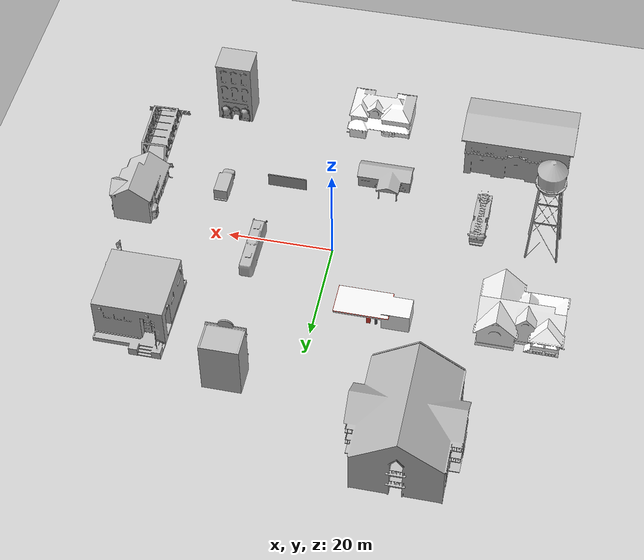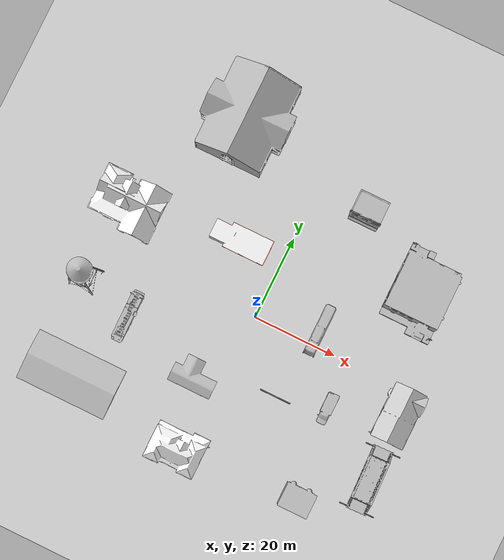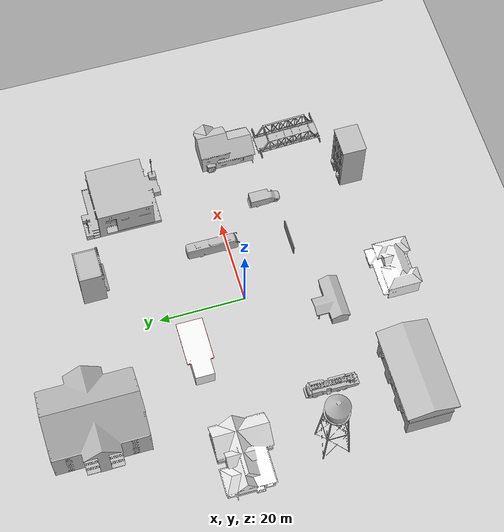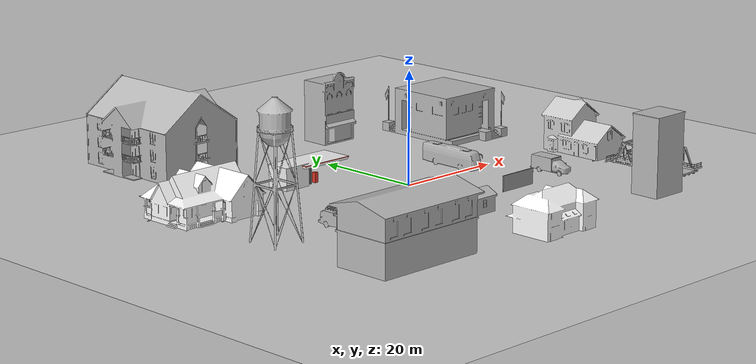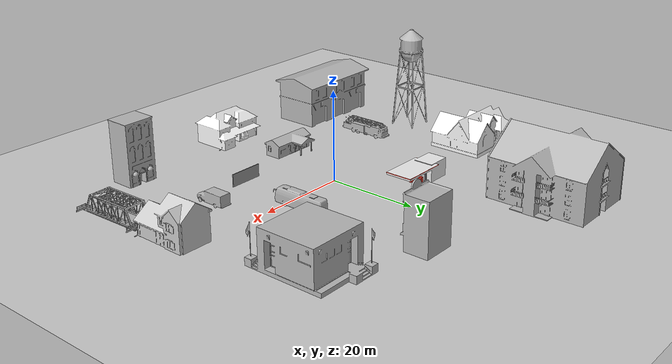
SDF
<sdf version="1.6">
 <world name="default">
  <light name="sun" type="directional">
   <pose>0 0 10 0 -0 0</pose>
   <diffuse>0.8 0.8 0.8 1</diffuse>
   <specular>0.2 0.2 0.2 1</specular>
   <attenuation>
    <range>1000</range>
    <constant>0.9</constant>
    <linear>0.01</linear>
    <quadratic>0.001</quadratic>
   </attenuation>
   <direction>-0.5 0.1 -0.9</direction>
  </light>
  <model name="ground_plane">
   <static>1</static>
   <link name="link">
    <collision name="collision">
     <geometry><plane><normal>0 0 1</normal><size>100 100</size></plane></geometry>
     <surface>
      <contact><collide_bitmask>65535</collide_bitmask></contact>
      <friction><ode><mu>100</mu><mu2>50</mu2></ode></friction>
     </surface>
    </collision>
    <visual name="visual">
     <cast_shadows>0</cast_shadows>
     <geometry><plane><normal>0 0 1</normal><size>100 100</size></plane></geometry>
     <material>
      <script><uri>file://media/materials/scripts/gazebo.material</uri><name>Gazebo/Grey</name></script>
     </material>
    </visual>
   </link>
  </model>
  <gravity>0 0 -9.8</gravity>
  <magnetic_field>6e-06 2.3e-05 -4.2e-05</magnetic_field>
  <atmosphere type="adiabatic"/>
  <physics name="default_physics" default="0" type="ode">
   <max_step_size>0.001</max_step_size>
   <real_time_factor>1</real_time_factor>
   <real_time_update_rate>1000</real_time_update_rate>
  </physics>
  <scene><ambient>0.4 0.4 0.4 1</ambient><background>0.7 0.7 0.7 1</background><shadows>1</shadows></scene>
  <spherical_coordinates>
   <surface_model>EARTH_WGS84</surface_model>
   <latitude_deg>0</latitude_deg>
   <longitude_deg>0</longitude_deg>
   <elevation>0</elevation>
   <heading_deg>0</heading_deg>
  </spherical_coordinates>
  <model name="fire_station">
   <static>1</static>
   <link name="link">
    <collision name="main">
     <pose>0 -0.135 5 0 -0 0</pose>
     <geometry><box><size>19.98 9.68 10</size></box></geometry>
    </collision>
    <collision name="front_top">
     <pose>0 4.957 7 0 -0 0</pose>
     <geometry><box><size>20 0.515 6</size></box></geometry>
    </collision>
    <collision name="column_0">
     <pose>9.333 4.957 2 0 -0 0</pose>
     <geometry><box><size>1.315 0.515 4</size></box></geometry>
    </collision>
    <collision name="column_1">
     <pose>3.33 4.957 2 0 -0 0</pose>
     <geometry><box><size>2.63 0.515 4</size></box></geometry>
    </collision>
    <collision name="column_2">
     <pose>-3.33 4.957 2 0 -0 0</pose>
     <geometry><box><size>2.63 0.515 4</size></box></geometry>
    </collision>
    <collision name="column_3">
     <pose>-9.333 4.957 2 0 -0 0</pose>
     <geometry><box><size>1.315 0.515 4</size></box></geometry>
    </collision>
    <collision name="roof_back">
     <pose>0 -2.742 10.467 0.25 -0 0</pose>
     <geometry><box><size>21.47 6.12 0.28</size></box></geometry>
    </collision>
    <collision name="roof_front">
     <pose>0 3.12 10.467 -0.25 0 0</pose>
     <geometry><box><size>21.47 6.12 0.28</size></box></geometry>
    </collision>
    <collision name="roof_base">
     <pose>0 0.188 9.705 0 -0 0</pose>
     <geometry><box><size>21.47 11.86 0.28</size></box></geometry>
    </collision>
    <collision name="roof_filling_0">
     <pose>0 0.188 9.985 0 -0 0</pose>
     <geometry><box><size>21.47 9.53 0.28</size></box></geometry>
    </collision>
    <collision name="roof_filling_1">
     <pose>0 0.188 10.14 0 -0 0</pose>
     <geometry><box><size>21.47 8.41 0.28</size></box></geometry>
    </collision>
    <collision name="roof_filling_2">
     <pose>0 0.188 10.42 0 -0 0</pose>
     <geometry><box><size>21.47 6.25 0.28</size></box></geometry>
    </collision>
    <collision name="roof_filling_3">
     <pose>0 0.188 10.7 0 -0 0</pose>
     <geometry><box><size>21.47 4.05 0.28</size></box></geometry>
    </collision>
    <collision name="roof_filling_4">
     <pose>0 0.188 10.98 0 -0 0</pose>
     <geometry><box><size>21.47 1.83 0.28</size></box></geometry>
    </collision>
    <visual name="visual">
     <geometry><mesh><uri>model://fire_station/meshes/fire_station.dae</uri></mesh></geometry>
    </visual>
   </link>
   <pose>-30.9398 -30.023 0 0 -0 0</pose>
  </model>
  <model name="Gas Station">
   <static>1</static>
   <link name="link">
    <collision name="collision">
     <geometry><mesh><uri>model://gas_station/meshes/gas_station.dae</uri></mesh></geometry>
    </collision>
    <visual name="visual">
     <geometry><mesh><uri>model://gas_station/meshes/gas_station.dae</uri></mesh></geometry>
     <material>
      <script>
       <uri>model://gas_station/materials/scripts</uri>
       <uri>model://gas_station/materials/textures</uri>
       <name>GasStation/Diffuse</name>
      </script>
      <shader type="normal_map_tangent_space"><normal_map>GasStation_Normal.png</normal_map></shader>
     </material>
    </visual>
   </link>
   <pose>-11.0798 14.0384 0 0 -0 0</pose>
  </model>
  <model name="House 1">
   <static>1</static>
   <link name="link">
    <collision name="collision">
     <geometry><mesh><uri>model://house_1/meshes/house_1.dae</uri><scale>1.5 1.5 1.5</scale></mesh></geometry>
    </collision>
    <visual name="visual">
     <geometry><mesh><uri>model://house_1/meshes/house_1.dae</uri><scale>1.5 1.5 1.5</scale></mesh></geometry>
     <material>
      <script>
       <uri>model://house_1/materials/scripts</uri>
       <uri>model://house_1/materials/textures</uri>
       <name>House_1/Diffuse</name>
      </script>
      <shader type="normal_map_tangent_space"><normal_map>House_1_Normal.png</normal_map></shader>
     </material>
    </visual>
   </link>
   <pose>-36.8787 10.8582 0 0 -0 0</pose>
  </model>
  <model name="House 2">
   <static>1</static>
   <link name="link">
    <collision name="collision">
     <geometry><mesh><uri>model://house_2/meshes/house_2.dae</uri><scale>1.5 1.5 1.5</scale></mesh></geometry>
    </collision>
    <visual name="visual">
     <geometry><mesh><uri>model://house_2/meshes/house_2.dae</uri><scale>1.5 1.5 1.5</scale></mesh></geometry>
     <material>
      <script>
       <uri>model://house_2/materials/scripts</uri>
       <uri>model://house_2/materials/textures</uri>
       <uri>model://house_1/materials/textures</uri>
       <name>House_2/Diffuse</name>
      </script>
      <shader type="normal_map_tangent_space">
       <normal_map>model://house_1/materials/textures/House_1_Normal.png</normal_map>
      </shader>
     </material>
    </visual>
   </link>
   <pose>-3.94 -35.1532 0 0 -0 0</pose>
  </model>
  <model name="House 3">
   <static>1</static>
   <link name="link">
    <collision name="collision">
     <geometry><mesh><uri>model://house_3/meshes/house_3.dae</uri><scale>1.5 1.5 1.5</scale></mesh></geometry>
    </collision>
    <visual name="visual">
     <geometry><mesh><uri>model://house_3/meshes/house_3.dae</uri><scale>1.5 1.5 1.5</scale></mesh></geometry>
     <material>
      <script>
       <uri>model://house_3/materials/scripts</uri>
       <uri>model://house_3/materials/textures</uri>
       <uri>model://house_1/materials/textures</uri>
       <name>House_3/Diffuse</name>
      </script>
      <shader type="normal_map_tangent_space">
       <normal_map>model://house_1/materials/textures/House_1_Normal.png</normal_map>
      </shader>
     </material>
    </visual>
   </link>
   <pose>38.7823 -6.47876 0 0 0 -1.57467</pose>
  </model>
  <model name="law_office">
   <static>1</static>
   <link name="link">
    <collision name="collision">
     <pose>0 0 6.96244 0 -0 0</pose>
     <geometry><box><size>6.84401 5.43165 13.9249</size></box></geometry>
    </collision>
    <visual name="visual">
     <geometry><mesh><uri>model://law_office/meshes/law_office.dae</uri></mesh></geometry>
    </visual>
   </link>
   <pose>26.141 -32.8247 0 0 -0 3.1393</pose>
  </model>
  <model name="police_station">
   <static>1</static>
   <link name="link">
    <collision name="collision_main">
     <pose>0 0 4.28998 0 -0 0</pose>
     <geometry><box><size>13.037 13.037 8.57995</size></box></geometry>
    </collision>
    <collision name="collision_landing">
     <pose>0 0 0.464086 0 -0 0</pose>
     <geometry><box><size>13.037 16.2446 0.928173</size></box></geometry>
    </collision>
    <visual name="visual">
     <geometry><mesh><uri>model://police_station/meshes/police_station.dae</uri></mesh></geometry>
    </visual>
   </link>
   <pose>31.3204 21.3078 0 0 -0 0</pose>
  </model>
  <model name="post_office">
   <static>1</static>
   <link name="link">
    <collision name="collision">
     <geometry><mesh><uri>model://post_office/meshes/post_office.dae</uri></mesh></geometry>
    </collision>
    <visual name="visual">
     <geometry><mesh><uri>model://post_office/meshes/post_office.dae</uri></mesh></geometry>
    </visual>
   </link>
   <pose>-6.47972 -19.2063 0 0 -0 0</pose>
  </model>
  <model name="thrift_shop">
   <static>1</static>
   <link name="link">
    <collision name="collision">
     <pose>0 0 5.69469 0 -0 0</pose>
     <geometry><box><size>7.21297 5.43165 11.3894</size></box></geometry>
    </collision>
    <visual name="visual">
     <pose>0 -0.912491 0 0 -0 0</pose>
     <geometry><mesh><uri>model://thrift_shop/meshes/thrift_shop.dae</uri></mesh></geometry>
    </visual>
   </link>
   <pose>12.5116 32.7642 0 0 -0 0</pose>
  </model>
  <model name="truss_bridge">
   <static>1</static>
   <link name="link">
    <collision name="collision">
     <geometry><mesh><uri>model://truss_bridge/meshes/truss_bridge.dae</uri></mesh></geometry>
    </collision>
    <visual name="visual">
     <geometry><mesh><uri>model://truss_bridge/meshes/truss_bridge.dae</uri></mesh></geometry>
    </visual>
   </link>
   <pose>39.3302 -21.7089 0 0 -0 -3.10989</pose>
  </model>
  <model name="water_tower">
   <static>1</static>
   <link name="link">
    <collision name="collision">
     <geometry><mesh><uri>model://water_tower/meshes/water_tower.dae</uri></mesh></geometry>
    </collision>
    <visual name="visual">
     <geometry><mesh><uri>model://water_tower/meshes/water_tower.dae</uri></mesh></geometry>
    </visual>
   </link>
   <pose>-38.5582 -8.66658 0 0 -0 0</pose>
  </model>
  <model name="grey_wall">
   <static>1</static>
   <link name="link">
    <pose>0 0 1.4 0 -0 0</pose>
    <collision name="collision"><geometry><box><size>7.5 0.2 2.8</size></box></geometry></collision>
    <visual name="visual">
     <cast_shadows>0</cast_shadows>
     <geometry><box><size>7.5 0.2 2.8</size></box></geometry>
     <material>
      <script>
       <uri>model://grey_wall/materials/scripts</uri>
       <uri>model://grey_wall/materials/textures</uri>
       <name>vrc/grey_wall</name>
      </script>
     </material>
    </visual>
   </link>
   <pose>11.9052 -14.1844 0 0 -0 0</pose>
  </model>
  <model name="bus">
   <static>1</static>
   <link name="link">
    <collision name="collision">
     <geometry><mesh><scale>0.01 0.01 0.01</scale><uri>model://bus/meshes/bus.obj</uri></mesh></geometry>
    </collision>
    <visual name="visual">
     <geometry><mesh><scale>0.01 0.01 0.01</scale><uri>model://bus/meshes/bus.obj</uri></mesh></geometry>
    </visual>
   </link>
   <pose>14.4559 3.63813 0 0 -0 0</pose>
  </model>
  <model name="fire_truck">
   <static>1</static>
   <link name="link">
    <collision name="collision">
     <geometry>
      <mesh><scale>0.1 0.1 0.1</scale><uri>model://fire_truck/meshes/fire_truck.obj</uri></mesh>
     </geometry>
    </collision>
    <visual name="visual">
     <geometry>
      <mesh><scale>0.1 0.1 0.1</scale><uri>model://fire_truck/meshes/fire_truck.obj</uri></mesh>
     </geometry>
    </visual>
   </link>
   <pose>-26.1545 -12.1053 0 0 -0 0</pose>
  </model>
  <model name="ambulance">
   <static>1</static>
   <link name="link">
    <collision name="collision">
     <geometry>
      <mesh><scale>0.0254 0.0254 0.0254</scale><uri>model://ambulance/meshes/ambulance.obj</uri></mesh>
     </geometry>
    </collision>
    <visual name="visual">
     <geometry>
      <mesh><scale>0.0254 0.0254 0.0254</scale><uri>model://ambulance/meshes/ambulance.obj</uri></mesh>
     </geometry>
    </visual>
   </link>
   <pose>23.6824 -11.3843 0 0 -0 0</pose>
  </model>
  <model name="apartment">
   <static>1</static>
   <link name="link">
    <collision name="collision">
     <geometry><mesh><uri>model://apartment/meshes/apartment.dae</uri></mesh></geometry>
    </collision>
    <visual name="visual">
     <geometry><mesh><uri>model://apartment/meshes/apartment.dae</uri></mesh></geometry>
    </visual>
   </link>
   <pose>-21.3024 39.8876 0 0 -0 0</pose>
  </model>
 </world>
</sdf>
